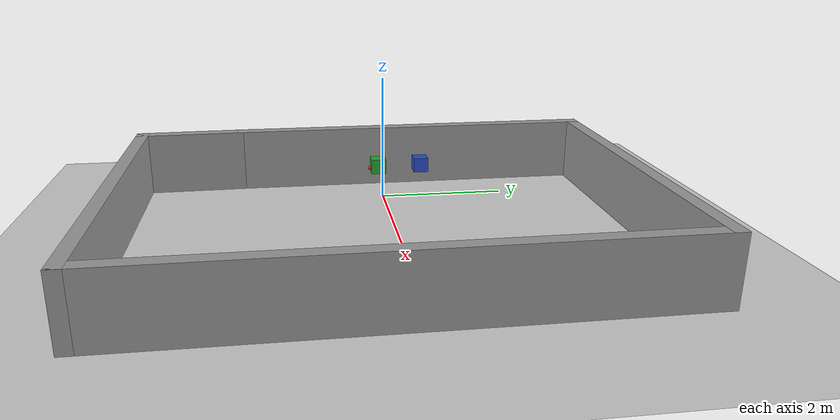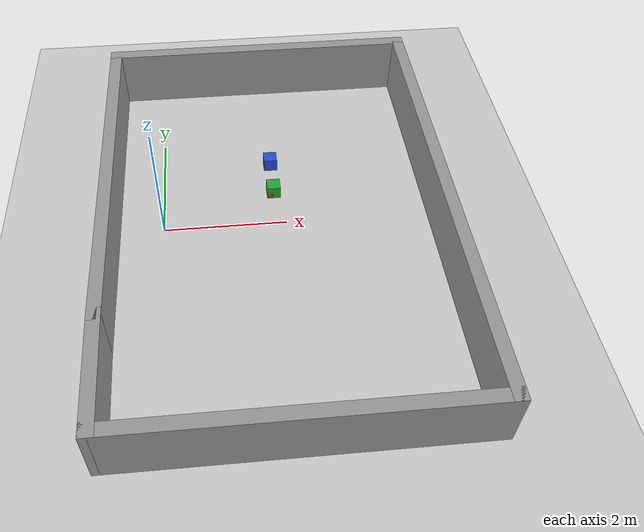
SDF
<sdf version="1.4">
 <world name="pick">
  <physics type="ode">
   <gravity>0 0 -9.81</gravity>
   <ode>
    <solver><type>quick</type><iters>50</iters><sor>1.4</sor></solver>
    <constraints>
     <cfm>0.0</cfm>
     <erp>0.2</erp>
     <contact_max_correcting_vel>100.0</contact_max_correcting_vel>
     <contact_surface_layer>0.0</contact_surface_layer>
    </constraints>
   </ode>
   <real_time_update_rate>1000</real_time_update_rate>
   <max_step_size>0.005</max_step_size>
  </physics>
  <plugin filename="gz-sim-physics-system" name="gz::sim::systems::Physics"/>
  <plugin filename="gz-sim-user-commands-system" name="gz::sim::systems::UserCommands"/>
  <plugin filename="gz-sim-scene-broadcaster-system" name="gz::sim::systems::SceneBroadcaster"/>
  <plugin filename="gz-sim-sensors-system" name="gz::sim::systems::Sensors">
   <render_engine>ogre2</render_engine>
  </plugin>
  <plugin filename="gz-sim-imu-system" name="gz::sim::systems::Imu"/>
  <include><uri>model://sun</uri></include>
  <include><uri>model://ground_plane</uri></include>
  <model name="Room">
   <link name="Wall_3">
    <collision name="Wall_3_Collision">
     <geometry><box><size>6.0067 0.2 1</size></box></geometry>
     <pose>0 0 0.5 0 -0 0</pose>
    </collision>
    <visual name="Wall_3_Visual">
     <pose>0 0 0.5 0 -0 0</pose>
     <geometry><box><size>6.0067 0.2 1</size></box></geometry>
     <material>
      <script><uri>file://media/materials/scripts/gazebo.material</uri><name>Gazebo/Grey</name></script>
     </material>
    </visual>
    <velocity_decay><linear>0</linear><angular>0</angular></velocity_decay>
    <pose>-1.222 0.0695 0 0 -0 1.5708</pose>
   </link>
   <link name="Wall_4">
    <collision name="Wall_4_Collision">
     <geometry><box><size>5.42953 0.2 1</size></box></geometry>
     <pose>0 0 0.5 0 -0 0</pose>
    </collision>
    <visual name="Wall_4_Visual">
     <pose>0 0 0.5 0 -0 0</pose>
     <geometry><box><size>5.42953 0.2 1</size></box></geometry>
     <material>
      <script><uri>file://media/materials/scripts/gazebo.material</uri><name>Gazebo/Grey</name></script>
     </material>
    </visual>
    <velocity_decay><linear>0</linear><angular>0</angular></velocity_decay>
    <pose>1.39289 2.97309 0 0 -0 3.3e-05</pose>
   </link>
   <link name="Wall_5">
    <collision name="Wall_5_Collision">
     <geometry><box><size>7.66826 0.2 1</size></box></geometry>
     <pose>0 0 0.5 0 -0 0</pose>
    </collision>
    <visual name="Wall_5_Visual">
     <pose>0 0 0.5 0 -0 0</pose>
     <geometry><box><size>7.66826 0.2 1</size></box></geometry>
     <material>
      <script><uri>file://media/materials/scripts/gazebo.material</uri><name>Gazebo/Grey</name></script>
     </material>
    </visual>
    <velocity_decay><linear>0</linear><angular>0</angular></velocity_decay>
    <pose>4.00778 -0.760957 0 0 0 -1.5708</pose>
   </link>
   <link name="Wall_6">
    <collision name="Wall_6_Collision">
     <geometry><box><size>5.39455 0.2 1</size></box></geometry>
     <pose>0 0 0.5 0 -0 0</pose>
    </collision>
    <visual name="Wall_6_Visual">
     <pose>0 0 0.5 0 -0 0</pose>
     <geometry><box><size>5.39455 0.2 1</size></box></geometry>
     <material>
      <script><uri>file://media/materials/scripts/gazebo.material</uri><name>Gazebo/Grey</name></script>
     </material>
    </visual>
    <velocity_decay><linear>0</linear><angular>0</angular></velocity_decay>
    <pose>1.4105 -4.49509 0 0 -0 3.14159</pose>
   </link>
   <link name="Wall_7">
    <collision name="Wall_7_Collision">
     <geometry><box><size>1.86192 0.2 1</size></box></geometry>
     <pose>0 0 0.5 0 -0 0</pose>
    </collision>
    <visual name="Wall_7_Visual">
     <pose>0 0 0.5 0 -0 0</pose>
     <geometry><box><size>1.86192 0.2 1</size></box></geometry>
     <material>
      <script><uri>file://media/materials/scripts/gazebo.material</uri><name>Gazebo/Grey</name></script>
     </material>
    </visual>
    <velocity_decay><linear>0</linear><angular>0</angular></velocity_decay>
    <pose>-1.20439 -3.66454 0 0 -0 1.592</pose>
   </link>
   <static>1</static>
   <pose>0.414776 0.54113 0 0 -0 0</pose>
  </model>
  <model name="cricket_ball">
   <pose>1.7 -0.4 1.05 0 0 0</pose>
   <link name="ball">
    <collision name="collision"><geometry><sphere><radius>0.036</radius></sphere></geometry></collision>
    <visual name="visual">
     <geometry><sphere><radius>0.036</radius></sphere></geometry>
     <material>
      <script><uri>file://media/materials/scripts/gazebo.material</uri><name>Gazebo/Red</name></script>
     </material>
    </visual>
   </link>
  </model>
  <model name="green_cube">
   <pose>1.75 -0.3 1.1 0 0 0</pose>
   <link name="link">
    <collision name="collision"><geometry><box><size>0.2 0.2 0.2</size></box></geometry></collision>
    <visual name="visual">
     <geometry><box><size>0.2 0.2 0.2</size></box></geometry>
     <material>
      <script><uri>file://media/materials/scripts/gazebo.material</uri><name>Gazebo/Green</name></script>
     </material>
    </visual>
   </link>
  </model>
  <model name="blue_cube">
   <pose>1.75 0.3 1.1 0 0 0</pose>
   <link name="link">
    <collision name="collision"><geometry><box><size>0.2 0.2 0.2</size></box></geometry></collision>
    <visual name="visual">
     <geometry><box><size>0.2 0.2 0.2</size></box></geometry>
     <material>
      <script><uri>file://media/materials/scripts/gazebo.material</uri><name>Gazebo/Blue</name></script>
     </material>
    </visual>
   </link>
  </model>
 </world>
</sdf>
